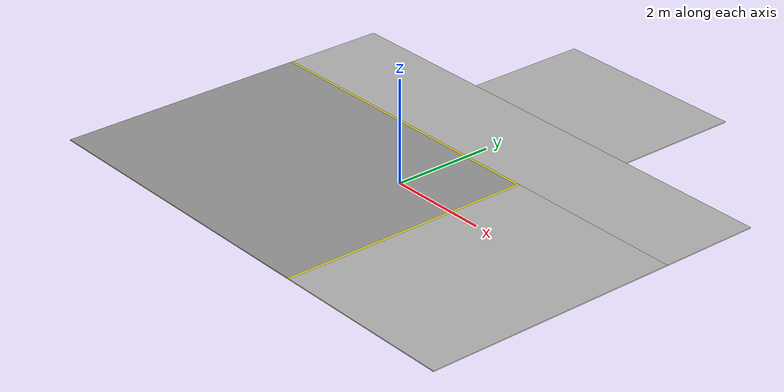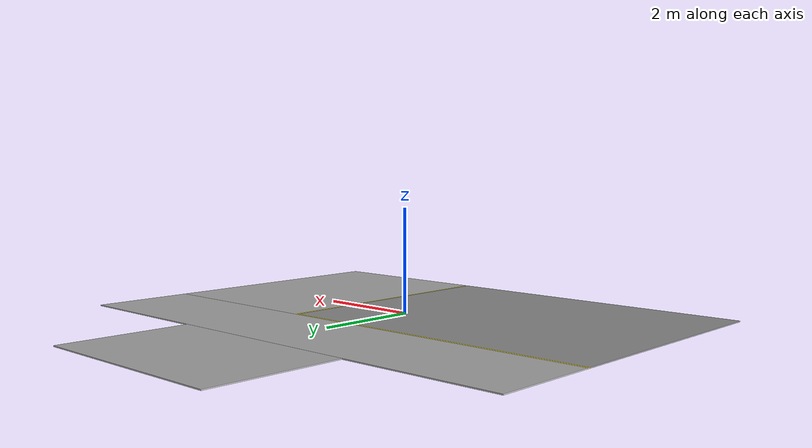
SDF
<?xml version="1.0" ?>
<sdf version="1.6">
    <model name="lar_floor">
        <link name='floor'>
        <pose frame=''>0 0 0 0 0 0</pose>
        <inertial>
            <mass>1000</mass>
            <inertia>
            <ixx>0.166667</ixx>
            <ixy>0</ixy>
            <ixz>0</ixz>
            <iyy>0.166667</iyy>
            <iyz>0</iyz>
            <izz>0.166667</izz>
            </inertia>
            <pose frame=''>0 0 0 0 -0 0</pose>
        </inertial>
        <gravity>1</gravity>
        <self_collide>0</self_collide>
        <kinematic>0</kinematic>
        <visual name='visual_1'>
            <pose frame=''>3.2 -0.985 0.01 0 -0 0</pose>
            <geometry>
                <box>
                    <size>3.6 5.03 0.02</size>
                </box>
            </geometry>
            <material>
              <script>
                <uri> model://lar_floor/materials/scripts/lar_floor.material</uri>
                <name> lar_floor/visual_1 </name>
              </script>
            </material>
            <cast_shadows>0</cast_shadows>
            <transparency>0</transparency>
        </visual>
        <visual name='visual_2'>
            <pose frame=''>0 4.75 0.01 0 -0 0</pose>
            <geometry>
                <box>
                    <size>4 2.5 0.02</size>
                </box>
            </geometry>
            <material>
              <script>
                <uri> model://lar_floor/materials/scripts/lar_floor.material</uri>
                <name> lar_floor/visual_2 </name>
              </script>
            </material>
            <cast_shadows>0</cast_shadows>
            <transparency>0</transparency>
        </visual>
        <visual name='visual_3'>
            <pose frame=''>-1.825 -1.01 0.01 0 -0 0</pose>
            <geometry>
                <box>
                    <size>6.35 4.98 0.02</size>
                </box>
            </geometry>
            <material>
              <script>
                <uri>file://media/materials/scripts/gazebo.material</uri>
                <name>Gazebo/Grey</name>
              </script>
            </material>
            <cast_shadows>0</cast_shadows>
            <transparency>0</transparency>
        </visual>
        <visual name='visual_4'>
            <pose frame=''>1.375 -0.985 0.01 0 -0 0</pose>
            <geometry>
                <box>
                    <size>0.05 5.03 0.02</size>
                </box>
            </geometry>
            <material>
              <script>
                <uri>file://media/materials/scripts/gazebo.material</uri>
                <name>Gazebo/DarkYellow  </name>
              </script>
            </material>
            <cast_shadows>0</cast_shadows>
            <transparency>0</transparency>
        </visual>
        <visual name='visual_5'>
            <pose frame=''>-1.825 1.505 0.01 0 -0 0</pose>
            <geometry>
                <box>
                    <size>6.35 0.05 0.02</size>
                </box>
            </geometry>
            <material>
              <script>
                <uri>file://media/materials/scripts/gazebo.material</uri>
                <name>Gazebo/DarkYellow  </name>
              </script>
            </material>
            <cast_shadows>0</cast_shadows>
            <transparency>0</transparency>
        </visual>
        <visual name='visual_6'>
            <pose frame=''>0 2.515 0.01 0 -0 0</pose>
            <geometry>
                <box>
                    <size>10 1.97 0.02</size>
                </box>
            </geometry>
            <material>
              <script>
                <uri> model://lar_floor/materials/scripts/lar_floor.material</uri>
                <name> lar_floor/visual_6 </name>
              </script>
            </material>
            <cast_shadows>0</cast_shadows>
            <transparency>0</transparency>
        </visual>
        <collision name='collision_1'>
            <laser_retro>0</laser_retro>
            <max_contacts>10</max_contacts>
            <pose frame=''>0 0 0.01 0 -0 0</pose>
            <geometry>
                <box>
                    <size>10 7.0 0.02</size>
                </box>
            </geometry>
            <surface>
            <friction>
                <ode>
                <mu>1</mu>
                <mu2>1</mu2>
                <fdir1>0 0 0</fdir1>
                <slip1>0</slip1>
                <slip2>0</slip2>
                </ode>
                <torsional>
                    <coefficient>1</coefficient>
                    <patch_radius>0</patch_radius>
                    <surface_radius>0</surface_radius>
                    <use_patch_radius>1</use_patch_radius>
                    <ode>
                        <slip>0</slip>
                    </ode>
                </torsional>
            </friction>
            <bounce>
                <restitution_coefficient>0</restitution_coefficient>
                <threshold>1e+06</threshold>
            </bounce>
            <contact>
                <collide_without_contact>0</collide_without_contact>
                <collide_without_contact_bitmask>1</collide_without_contact_bitmask>
                <collide_bitmask>1</collide_bitmask>
                <ode>
                    <soft_cfm>0</soft_cfm>
                    <soft_erp>0.2</soft_erp>
                    <kp>1e+13</kp>
                    <kd>1</kd>
                    <max_vel>0.01</max_vel>
                    <min_depth>0</min_depth>
                </ode>
                <bullet>
                    <split_impulse>1</split_impulse>
                    <split_impulse_penetration_threshold>-0.01</split_impulse_penetration_threshold>
                    <soft_cfm>0</soft_cfm>
                    <soft_erp>0.2</soft_erp>
                    <kp>1e+13</kp>
                    <kd>1</kd>
                </bullet>
            </contact>
            </surface>
        </collision>
        <collision name='collision_2'>
            <laser_retro>0</laser_retro>
            <max_contacts>10</max_contacts>
            <pose frame=''>0 4.75 0.01 0 -0 0</pose>
            <geometry>
                <box>
                    <size>4 2.5 0.02</size>
                </box>
            </geometry>
            <surface>
            <friction>
                <ode>
                <mu>1</mu>
                <mu2>1</mu2>
                <fdir1>0 0 0</fdir1>
                <slip1>0</slip1>
                <slip2>0</slip2>
                </ode>
                <torsional>
                    <coefficient>1</coefficient>
                    <patch_radius>0</patch_radius>
                    <surface_radius>0</surface_radius>
                    <use_patch_radius>1</use_patch_radius>
                    <ode>
                        <slip>0</slip>
                    </ode>
                </torsional>
            </friction>
            <bounce>
                <restitution_coefficient>0</restitution_coefficient>
                <threshold>1e+06</threshold>
            </bounce>
            <contact>
                <collide_without_contact>0</collide_without_contact>
                <collide_without_contact_bitmask>1</collide_without_contact_bitmask>
                <collide_bitmask>1</collide_bitmask>
                <ode>
                    <soft_cfm>0</soft_cfm>
                    <soft_erp>0.2</soft_erp>
                    <kp>1e+13</kp>
                    <kd>1</kd>
                    <max_vel>0.01</max_vel>
                    <min_depth>0</min_depth>
                </ode>
                <bullet>
                    <split_impulse>1</split_impulse>
                    <split_impulse_penetration_threshold>-0.01</split_impulse_penetration_threshold>
                    <soft_cfm>0</soft_cfm>
                    <soft_erp>0.2</soft_erp>
                    <kp>1e+13</kp>
                    <kd>1</kd>
                </bullet>
            </contact>
            </surface>
        </collision>
        </link>
        <static>1</static>
        <allow_auto_disable>1</allow_auto_disable>
    </model>
</sdf>
